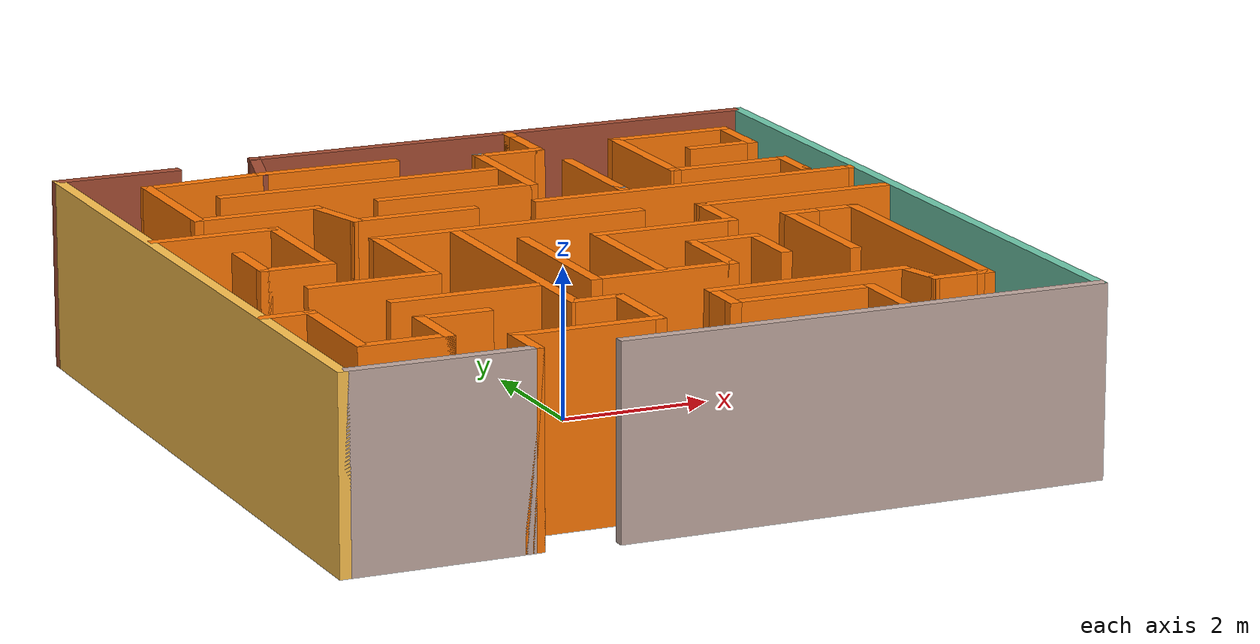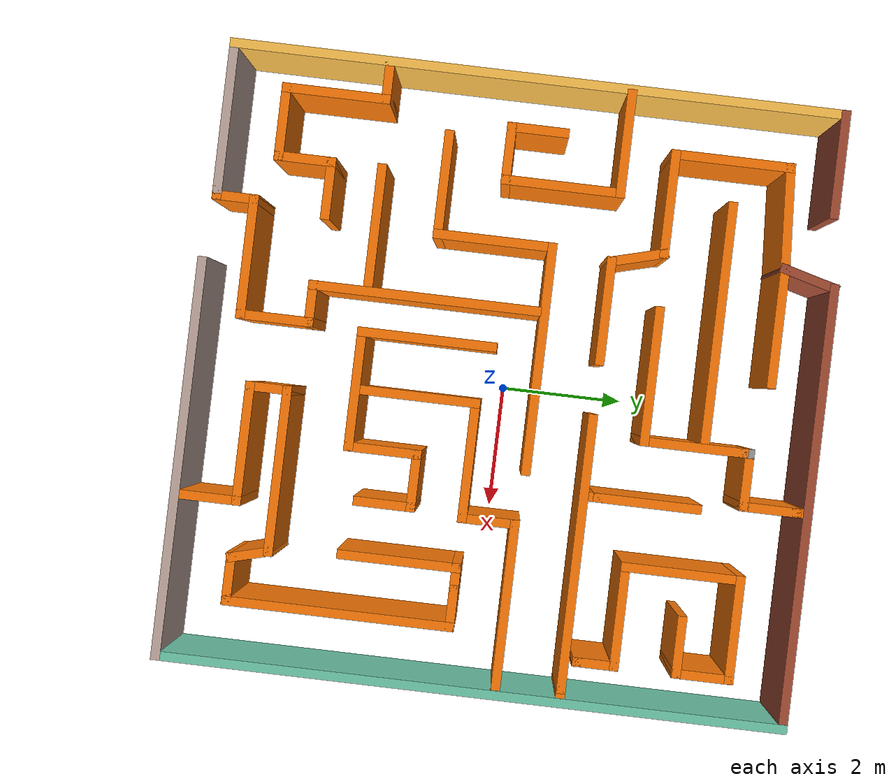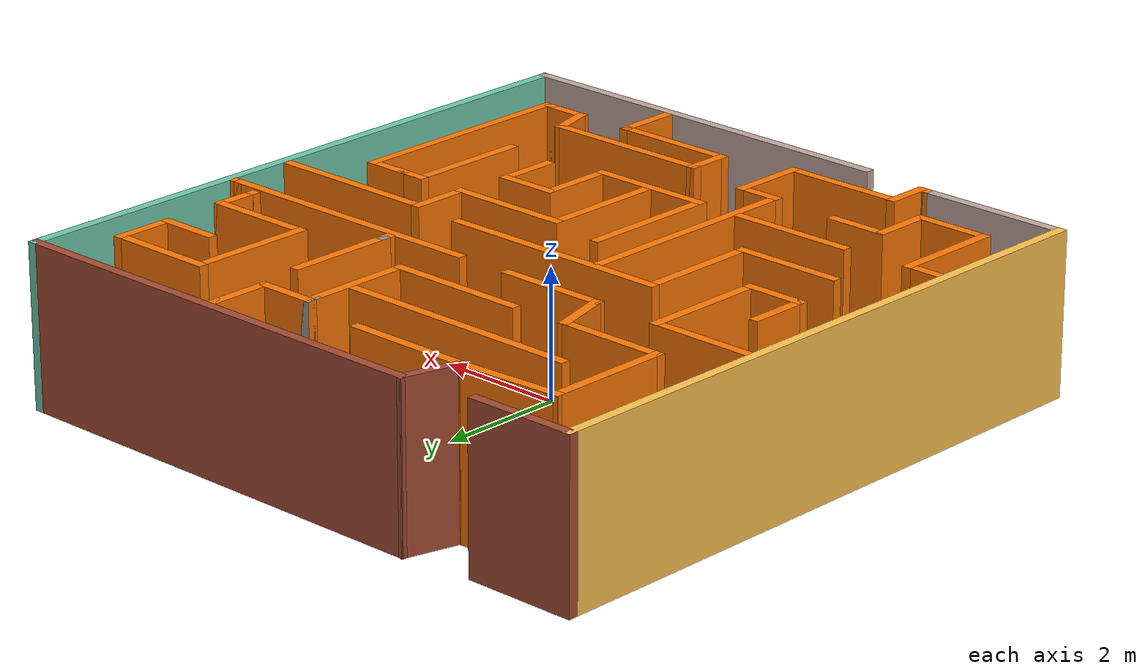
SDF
<?xml version='1.0'?>
<sdf version='1.7'>
  <model name='rom_maze_1'>
    <pose>-0.045778 0.035575 0 0 -0 0</pose>
    <link name='Wall_10'>
      <collision name='Wall_10_Collision'>
        <geometry>
          <box>
            <size>0.25 0.15 2.5</size>
          </box>
        </geometry>
        <pose>0 0 1.25 0 -0 0</pose>
      </collision>
      <visual name='Wall_10_Visual'>
        <pose>0 0 1.25 0 -0 0</pose>
        <geometry>
          <box>
            <size>0.25 0.15 2.5</size>
          </box>
        </geometry>
        <material>
          <script>
            <uri>file://media/materials/scripts/gazebo.material</uri>
            <name>Gazebo/Grey</name>
          </script>
          <ambient>0.996078 0.47451 0.0196078 1</ambient>
        </material>
        <meta>
          <layer>0</layer>
        </meta>
      </visual>
      <pose>-2.54054 -4.95 0 0 -0 0</pose>
    </link>
    <link name='Wall_11'>
      <collision name='Wall_11_Collision'>
        <geometry>
          <box>
            <size>0.75 0.15 2.5</size>
          </box>
        </geometry>
        <pose>0 0 1.25 0 -0 0</pose>
      </collision>
      <visual name='Wall_11_Visual'>
        <pose>0 0 1.25 0 -0 0</pose>
        <geometry>
          <box>
            <size>0.75 0.15 2.5</size>
          </box>
        </geometry>
        <material>
          <script>
            <uri>file://media/materials/scripts/gazebo.material</uri>
            <name>Gazebo/Grey</name>
          </script>
          <ambient>0.996078 0.47451 0.0196078 1</ambient>
        </material>
        <meta>
          <layer>0</layer>
        </meta>
      </visual>
      <pose>-2.49054 -4.65 0 0 -0 1.5708</pose>
    </link>
    <link name='Wall_12'>
      <collision name='Wall_12_Collision'>
        <geometry>
          <box>
            <size>2 0.15 2.5</size>
          </box>
        </geometry>
        <pose>0 0 1.25 0 -0 0</pose>
      </collision>
      <visual name='Wall_12_Visual'>
        <pose>0 0 1.25 0 -0 0</pose>
        <geometry>
          <box>
            <size>2 0.15 2.5</size>
          </box>
        </geometry>
        <material>
          <script>
            <uri>file://media/materials/scripts/gazebo.material</uri>
            <name>Gazebo/Grey</name>
          </script>
          <ambient>0.996078 0.47451 0.0196078 1</ambient>
        </material>
        <meta>
          <layer>0</layer>
        </meta>
      </visual>
      <pose>-1.56554 -4.35 0 0 -0 0</pose>
    </link>
    <link name='Wall_13'>
      <collision name='Wall_13_Collision'>
        <geometry>
          <box>
            <size>1.25 0.15 2.5</size>
          </box>
        </geometry>
        <pose>0 0 1.25 0 -0 0</pose>
      </collision>
      <visual name='Wall_13_Visual'>
        <pose>0 0 1.25 0 -0 0</pose>
        <geometry>
          <box>
            <size>1.25 0.15 2.5</size>
          </box>
        </geometry>
        <material>
          <script>
            <uri>file://media/materials/scripts/gazebo.material</uri>
            <name>Gazebo/Grey</name>
          </script>
          <ambient>0.996078 0.47451 0.0196078 1</ambient>
        </material>
        <meta>
          <layer>0</layer>
        </meta>
      </visual>
      <pose>-0.640538 -3.8 0 0 -0 1.5708</pose>
    </link>
    <link name='Wall_14'>
      <collision name='Wall_14_Collision'>
        <geometry>
          <box>
            <size>0.75 0.15 2.5</size>
          </box>
        </geometry>
        <pose>0 0 1.25 0 -0 0</pose>
      </collision>
      <visual name='Wall_14_Visual'>
        <pose>0 0 1.25 0 -0 0</pose>
        <geometry>
          <box>
            <size>0.75 0.15 2.5</size>
          </box>
        </geometry>
        <material>
          <script>
            <uri>file://media/materials/scripts/gazebo.material</uri>
            <name>Gazebo/Grey</name>
          </script>
          <ambient>0.996078 0.47451 0.0196078 1</ambient>
        </material>
        <meta>
          <layer>0</layer>
        </meta>
      </visual>
      <pose>-0.940538 -3.25 0 0 -0 3.14159</pose>
    </link>
    <link name='Wall_15'>
      <collision name='Wall_15_Collision'>
        <geometry>
          <box>
            <size>3.75 0.15 2.5</size>
          </box>
        </geometry>
        <pose>0 0 1.25 0 -0 0</pose>
      </collision>
      <visual name='Wall_15_Visual'>
        <pose>0 0 1.25 0 -0 0</pose>
        <geometry>
          <box>
            <size>3.75 0.15 2.5</size>
          </box>
        </geometry>
        <material>
          <script>
            <uri>file://media/materials/scripts/gazebo.material</uri>
            <name>Gazebo/Grey</name>
          </script>
          <ambient>0.996078 0.47451 0.0196078 1</ambient>
        </material>
        <meta>
          <layer>0</layer>
        </meta>
      </visual>
      <pose>-1.24054 -1.45 0 0 -0 1.5708</pose>
    </link>
    <link name='Wall_17'>
      <collision name='Wall_17_Collision'>
        <geometry>
          <box>
            <size>6.5 0.15 2.5</size>
          </box>
        </geometry>
        <pose>0 0 1.25 0 -0 0</pose>
      </collision>
      <visual name='Wall_17_Visual'>
        <pose>0 0 1.25 0 -0 0</pose>
        <geometry>
          <box>
            <size>6.5 0.15 2.5</size>
          </box>
        </geometry>
        <material>
          <script>
            <uri>file://media/materials/scripts/gazebo.material</uri>
            <name>Gazebo/Grey</name>
          </script>
          <ambient>0.760784 0.662745 0.627451 1</ambient>
        </material>
        <meta>
          <layer>0</layer>
        </meta>
      </visual>
      <pose>1.76554 -5.05843 0 0 -0 0</pose>
    </link>
    <link name='Wall_18'>
      <collision name='Wall_18_Collision'>
        <geometry>
          <box>
            <size>10.25 0.15 2.5</size>
          </box>
        </geometry>
        <pose>0 0 1.25 0 -0 0</pose>
      </collision>
      <visual name='Wall_18_Visual'>
        <pose>0 0 1.25 0 -0 0</pose>
        <geometry>
          <box>
            <size>10.25 0.15 2.5</size>
          </box>
        </geometry>
        <material>
          <script>
            <uri>file://media/materials/scripts/gazebo.material</uri>
            <name>Gazebo/Grey</name>
          </script>
          <ambient>0.435294 0.796078 0.67451 1</ambient>
        </material>
        <meta>
          <layer>0</layer>
        </meta>
      </visual>
      <pose>4.94054 -0.008428 0 0 -0 1.5708</pose>
    </link>
    <link name='Wall_19'>
      <collision name='Wall_19_Collision'>
        <geometry>
          <box>
            <size>7.25 0.15 2.5</size>
          </box>
        </geometry>
        <pose>0 0 1.25 0 -0 0</pose>
      </collision>
      <visual name='Wall_19_Visual'>
        <pose>0 0 1.25 0 -0 0</pose>
        <geometry>
          <box>
            <size>7.25 0.15 2.5</size>
          </box>
        </geometry>
        <material>
          <script>
            <uri>file://media/materials/scripts/gazebo.material</uri>
            <name>Gazebo/Bricks</name>
          </script>
          <ambient>1 1 1 1</ambient>
        </material>
        <meta>
          <layer>0</layer>
        </meta>
      </visual>
      <pose>1.39054 5.04157 0 0 -0 3.14159</pose>
    </link>
    <link name='Wall_20'>
      <collision name='Wall_20_Collision'>
        <geometry>
          <box>
            <size>1 0.15 2.5</size>
          </box>
        </geometry>
        <pose>0 0 1.25 0 -0 0</pose>
      </collision>
      <visual name='Wall_20_Visual'>
        <pose>0 0 1.25 0 -0 0</pose>
        <geometry>
          <box>
            <size>1 0.15 2.5</size>
          </box>
        </geometry>
        <material>
          <script>
            <uri>file://media/materials/scripts/gazebo.material</uri>
            <name>Gazebo/Bricks</name>
          </script>
          <ambient>1 1 1 1</ambient>
        </material>
        <meta>
          <layer>0</layer>
        </meta>
      </visual>
      <pose>-2.26946 4.63105 0 0 -0 -1.8326</pose>
    </link>
    <link name='Wall_21'>
      <collision name='Wall_21_Collision'>
        <geometry>
          <box>
            <size>2 0.15 2.5</size>
          </box>
        </geometry>
        <pose>0 0 1.25 0 -0 0</pose>
      </collision>
      <visual name='Wall_21_Visual'>
        <pose>0 0 1.25 0 -0 0</pose>
        <geometry>
          <box>
            <size>2 0.15 2.5</size>
          </box>
        </geometry>
        <material>
          <script>
            <uri>file://media/materials/scripts/gazebo.material</uri>
            <name>Gazebo/Grey</name>
          </script>
          <ambient>0.996078 0.47451 0.0196078 1</ambient>
        </material>
        <meta>
          <layer>0</layer>
        </meta>
      </visual>
      <pose>-1.45446 4.22053 0 0 -0 0</pose>
    </link>
    <link name='Wall_23'>
      <collision name='Wall_23_Collision'>
        <geometry>
          <box>
            <size>3.75 0.15 2.5</size>
          </box>
        </geometry>
        <pose>0 0 1.25 0 -0 0</pose>
      </collision>
      <visual name='Wall_23_Visual'>
        <pose>0 0 1.25 0 -0 0</pose>
        <geometry>
          <box>
            <size>3.75 0.15 2.5</size>
          </box>
        </geometry>
        <material>
          <script>
            <uri>file://media/materials/scripts/gazebo.material</uri>
            <name>Gazebo/Grey</name>
          </script>
          <ambient>0.996078 0.47451 0.0196078 1</ambient>
        </material>
        <meta>
          <layer>0</layer>
        </meta>
      </visual>
      <pose>-0.485112 0.482847 0 0 -0 3.14159</pose>
    </link>
    <link name='Wall_24'>
      <collision name='Wall_24_Collision'>
        <geometry>
          <box>
            <size>2 0.15 2.5</size>
          </box>
        </geometry>
        <pose>0 0 1.25 0 -0 0</pose>
      </collision>
      <visual name='Wall_24_Visual'>
        <pose>0 0 1.25 0 -0 0</pose>
        <geometry>
          <box>
            <size>2 0.15 2.5</size>
          </box>
        </geometry>
        <material>
          <script>
            <uri>file://media/materials/scripts/gazebo.material</uri>
            <name>Gazebo/Grey</name>
          </script>
          <ambient>0.996078 0.47451 0.0196078 1</ambient>
        </material>
        <meta>
          <layer>0</layer>
        </meta>
      </visual>
      <pose>-2.28511 -0.442153 0 0 -0 -1.5708</pose>
    </link>
    <link name='Wall_25'>
      <collision name='Wall_25_Collision'>
        <geometry>
          <box>
            <size>1.75 0.15 2.5</size>
          </box>
        </geometry>
        <pose>0 0 1.25 0 -0 0</pose>
      </collision>
      <visual name='Wall_25_Visual'>
        <pose>0 0 1.25 0 -0 0</pose>
        <geometry>
          <box>
            <size>1.75 0.15 2.5</size>
          </box>
        </geometry>
        <material>
          <script>
            <uri>file://media/materials/scripts/gazebo.material</uri>
            <name>Gazebo/Grey</name>
          </script>
          <ambient>0.996078 0.47451 0.0196078 1</ambient>
        </material>
        <meta>
          <layer>0</layer>
        </meta>
      </visual>
      <pose>-3.08511 -1.36715 0 0 -0 3.14159</pose>
    </link>
    <link name='Wall_27'>
      <collision name='Wall_27_Collision'>
        <geometry>
          <box>
            <size>0.75 0.15 2.5</size>
          </box>
        </geometry>
        <pose>0 0 1.25 0 -0 0</pose>
      </collision>
      <visual name='Wall_27_Visual'>
        <pose>0 0 1.25 0 -0 0</pose>
        <geometry>
          <box>
            <size>0.75 0.15 2.5</size>
          </box>
        </geometry>
        <material>
          <script>
            <uri>file://media/materials/scripts/gazebo.material</uri>
            <name>Gazebo/Grey</name>
          </script>
          <ambient>0.996078 0.47451 0.0196078 1</ambient>
        </material>
        <meta>
          <layer>0</layer>
        </meta>
      </visual>
      <pose>-4.62731 -2.43988 0 0 -0 0</pose>
    </link>
    <link name='Wall_28'>
      <collision name='Wall_28_Collision'>
        <geometry>
          <box>
            <size>1.75 0.15 2.5</size>
          </box>
        </geometry>
        <pose>0 0 1.25 0 -0 0</pose>
      </collision>
      <visual name='Wall_28_Visual'>
        <pose>0 0 1.25 0 -0 0</pose>
        <geometry>
          <box>
            <size>1.75 0.15 2.5</size>
          </box>
        </geometry>
        <material>
          <script>
            <uri>file://media/materials/scripts/gazebo.material</uri>
            <name>Gazebo/Grey</name>
          </script>
          <ambient>0.996078 0.47451 0.0196078 1</ambient>
        </material>
        <meta>
          <layer>0</layer>
        </meta>
      </visual>
      <pose>-4.32731 -3.23988 0 0 -0 -1.5708</pose>
    </link>
    <link name='Wall_29'>
      <collision name='Wall_29_Collision'>
        <geometry>
          <box>
            <size>1.25 0.15 2.5</size>
          </box>
        </geometry>
        <pose>0 0 1.25 0 -0 0</pose>
      </collision>
      <visual name='Wall_29_Visual'>
        <pose>0 0 1.25 0 -0 0</pose>
        <geometry>
          <box>
            <size>1.25 0.15 2.5</size>
          </box>
        </geometry>
        <material>
          <script>
            <uri>file://media/materials/scripts/gazebo.material</uri>
            <name>Gazebo/Grey</name>
          </script>
          <ambient>0.996078 0.47451 0.0196078 1</ambient>
        </material>
        <meta>
          <layer>0</layer>
        </meta>
      </visual>
      <pose>-3.77731 -4.03988 0 0 -0 0</pose>
    </link>
    <link name='Wall_30'>
      <collision name='Wall_30_Collision'>
        <geometry>
          <box>
            <size>1 0.15 2.5</size>
          </box>
        </geometry>
        <pose>0 0 1.25 0 -0 0</pose>
      </collision>
      <visual name='Wall_30_Visual'>
        <pose>0 0 1.25 0 -0 0</pose>
        <geometry>
          <box>
            <size>1 0.15 2.5</size>
          </box>
        </geometry>
        <material>
          <script>
            <uri>file://media/materials/scripts/gazebo.material</uri>
            <name>Gazebo/Grey</name>
          </script>
          <ambient>0.996078 0.47451 0.0196078 1</ambient>
        </material>
        <meta>
          <layer>0</layer>
        </meta>
      </visual>
      <pose>-3.22731 -3.61488 0 0 -0 1.5708</pose>
    </link>
    <link name='Wall_31'>
      <collision name='Wall_31_Collision'>
        <geometry>
          <box>
            <size>1 0.15 2.5</size>
          </box>
        </geometry>
        <pose>0 0 1.25 0 -0 0</pose>
      </collision>
      <visual name='Wall_31_Visual'>
        <pose>0 0 1.25 0 -0 0</pose>
        <geometry>
          <box>
            <size>1 0.15 2.5</size>
          </box>
        </geometry>
        <material>
          <script>
            <uri>file://media/materials/scripts/gazebo.material</uri>
            <name>Gazebo/Grey</name>
          </script>
          <ambient>0.996078 0.47451 0.0196078 1</ambient>
        </material>
        <meta>
          <layer>0</layer>
        </meta>
      </visual>
      <pose>-2.80231 -3.18988 0 0 -0 0</pose>
    </link>
    <link name='Wall_33'>
      <collision name='Wall_33_Collision'>
        <geometry>
          <box>
            <size>1.75 0.15 2.5</size>
          </box>
        </geometry>
        <pose>0 0 1.25 0 -0 0</pose>
      </collision>
      <visual name='Wall_33_Visual'>
        <pose>0 0 1.25 0 -0 0</pose>
        <geometry>
          <box>
            <size>1.75 0.15 2.5</size>
          </box>
        </geometry>
        <material>
          <script>
            <uri>file://media/materials/scripts/gazebo.material</uri>
            <name>Gazebo/Grey</name>
          </script>
          <ambient>0.996078 0.47451 0.0196078 1</ambient>
        </material>
        <meta>
          <layer>0</layer>
        </meta>
      </visual>
      <pose>-4.07441 1.4615 0 0 -0 0</pose>
    </link>
    <link name='Wall_34'>
      <collision name='Wall_34_Collision'>
        <geometry>
          <box>
            <size>2 0.15 2.5</size>
          </box>
        </geometry>
        <pose>0 0 1.25 0 -0 0</pose>
      </collision>
      <visual name='Wall_34_Visual'>
        <pose>0 0 1.25 0 -0 0</pose>
        <geometry>
          <box>
            <size>2 0.15 2.5</size>
          </box>
        </geometry>
        <material>
          <script>
            <uri>file://media/materials/scripts/gazebo.material</uri>
            <name>Gazebo/Grey</name>
          </script>
          <ambient>0.996078 0.47451 0.0196078 1</ambient>
        </material>
        <meta>
          <layer>0</layer>
        </meta>
      </visual>
      <pose>-3.27441 0.536497 0 0 -0 -1.5708</pose>
    </link>
    <link name='Wall_35'>
      <collision name='Wall_35_Collision'>
        <geometry>
          <box>
            <size>1 0.15 2.5</size>
          </box>
        </geometry>
        <pose>0 0 1.25 0 -0 0</pose>
      </collision>
      <visual name='Wall_35_Visual'>
        <pose>0 0 1.25 0 -0 0</pose>
        <geometry>
          <box>
            <size>1 0.15 2.5</size>
          </box>
        </geometry>
        <material>
          <script>
            <uri>file://media/materials/scripts/gazebo.material</uri>
            <name>Gazebo/Grey</name>
          </script>
          <ambient>0.996078 0.47451 0.0196078 1</ambient>
        </material>
        <meta>
          <layer>0</layer>
        </meta>
      </visual>
      <pose>-3.69941 -0.388503 0 0 -0 3.14159</pose>
    </link>
    <link name='Wall_36'>
      <collision name='Wall_36_Collision'>
        <geometry>
          <box>
            <size>1 0.15 2.5</size>
          </box>
        </geometry>
        <pose>0 0 1.25 0 -0 0</pose>
      </collision>
      <visual name='Wall_36_Visual'>
        <pose>0 0 1.25 0 -0 0</pose>
        <geometry>
          <box>
            <size>1 0.15 2.5</size>
          </box>
        </geometry>
        <material>
          <script>
            <uri>file://media/materials/scripts/gazebo.material</uri>
            <name>Gazebo/Grey</name>
          </script>
          <ambient>0.996078 0.47451 0.0196078 1</ambient>
        </material>
        <meta>
          <layer>0</layer>
        </meta>
      </visual>
      <pose>-4.12441 0.036497 0 0 -0 1.5708</pose>
    </link>
    <link name='Wall_38'>
      <collision name='Wall_38_Collision'>
        <geometry>
          <box>
            <size>2 0.15 2.5</size>
          </box>
        </geometry>
        <pose>0 0 1.25 0 -0 0</pose>
      </collision>
      <visual name='Wall_38_Visual'>
        <pose>0 0 1.25 0 -0 0</pose>
        <geometry>
          <box>
            <size>2 0.15 2.5</size>
          </box>
        </geometry>
        <material>
          <script>
            <uri>file://media/materials/scripts/gazebo.material</uri>
            <name>Gazebo/Grey</name>
          </script>
          <ambient>0.996078 0.47451 0.0196078 1</ambient>
        </material>
        <meta>
          <layer>0</layer>
        </meta>
      </visual>
      <pose>-2.29629 -2.37375 0 0 -0 0</pose>
    </link>
    <link name='Wall_40'>
      <collision name='Wall_40_Collision'>
        <geometry>
          <box>
            <size>1 0.15 2.5</size>
          </box>
        </geometry>
        <pose>0 0 1.25 0 -0 0</pose>
      </collision>
      <visual name='Wall_40_Visual'>
        <pose>0 0 1.25 0 -0 0</pose>
        <geometry>
          <box>
            <size>1 0.15 2.5</size>
          </box>
        </geometry>
        <material>
          <script>
            <uri>file://media/materials/scripts/gazebo.material</uri>
            <name>Gazebo/Grey</name>
          </script>
          <ambient>0.996078 0.47451 0.0196078 1</ambient>
        </material>
        <meta>
          <layer>0</layer>
        </meta>
      </visual>
      <pose>2.33321 -4.48795 0 0 -0 1.5708</pose>
    </link>
    <link name='Wall_41'>
      <collision name='Wall_41_Collision'>
        <geometry>
          <box>
            <size>2 0.15 2.5</size>
          </box>
        </geometry>
        <pose>0 0 1.25 0 -0 0</pose>
      </collision>
      <visual name='Wall_41_Visual'>
        <pose>0 0 1.25 0 -0 0</pose>
        <geometry>
          <box>
            <size>2 0.15 2.5</size>
          </box>
        </geometry>
        <material>
          <script>
            <uri>file://media/materials/scripts/gazebo.material</uri>
            <name>Gazebo/Grey</name>
          </script>
          <ambient>0.996078 0.47451 0.0196078 1</ambient>
        </material>
        <meta>
          <layer>0</layer>
        </meta>
      </visual>
      <pose>1.40821 -4.06295 0 0 -0 3.14159</pose>
    </link>
    <link name='Wall_42'>
      <collision name='Wall_42_Collision'>
        <geometry>
          <box>
            <size>0.75 0.15 2.5</size>
          </box>
        </geometry>
        <pose>0 0 1.25 0 -0 0</pose>
      </collision>
      <visual name='Wall_42_Visual'>
        <pose>0 0 1.25 0 -0 0</pose>
        <geometry>
          <box>
            <size>0.75 0.15 2.5</size>
          </box>
        </geometry>
        <material>
          <script>
            <uri>file://media/materials/scripts/gazebo.material</uri>
            <name>Gazebo/Grey</name>
          </script>
          <ambient>0.996078 0.47451 0.0196078 1</ambient>
        </material>
        <meta>
          <layer>0</layer>
        </meta>
      </visual>
      <pose>0.483213 -3.76295 0 0 -0 1.5708</pose>
    </link>
    <link name='Wall_43'>
      <collision name='Wall_43_Collision'>
        <geometry>
          <box>
            <size>2.75 0.15 2.5</size>
          </box>
        </geometry>
        <pose>0 0 1.25 0 -0 0</pose>
      </collision>
      <visual name='Wall_43_Visual'>
        <pose>0 0 1.25 0 -0 0</pose>
        <geometry>
          <box>
            <size>2.75 0.15 2.5</size>
          </box>
        </geometry>
        <material>
          <script>
            <uri>file://media/materials/scripts/gazebo.material</uri>
            <name>Gazebo/Grey</name>
          </script>
          <ambient>0.996078 0.47451 0.0196078 1</ambient>
        </material>
        <meta>
          <layer>0</layer>
        </meta>
      </visual>
      <pose>1.78321 -3.46295 0 0 -0 0</pose>
    </link>
    <link name='Wall_44'>
      <collision name='Wall_44_Collision'>
        <geometry>
          <box>
            <size>0.75 0.15 2.5</size>
          </box>
        </geometry>
        <pose>0 0 1.25 0 -0 0</pose>
      </collision>
      <visual name='Wall_44_Visual'>
        <pose>0 0 1.25 0 -0 0</pose>
        <geometry>
          <box>
            <size>0.75 0.15 2.5</size>
          </box>
        </geometry>
        <material>
          <script>
            <uri>file://media/materials/scripts/gazebo.material</uri>
            <name>Gazebo/Grey</name>
          </script>
          <ambient>0.996078 0.47451 0.0196078 1</ambient>
        </material>
        <meta>
          <layer>0</layer>
        </meta>
      </visual>
      <pose>3.16086 -3.75273 0 0 -0 -1.309</pose>
    </link>
    <link name='Wall_45'>
      <collision name='Wall_45_Collision'>
        <geometry>
          <box>
            <size>0.75 0.15 2.5</size>
          </box>
        </geometry>
        <pose>0 0 1.25 0 -0 0</pose>
      </collision>
      <visual name='Wall_45_Visual'>
        <pose>0 0 1.25 0 -0 0</pose>
        <geometry>
          <box>
            <size>0.75 0.15 2.5</size>
          </box>
        </geometry>
        <material>
          <script>
            <uri>file://media/materials/scripts/gazebo.material</uri>
            <name>Gazebo/Grey</name>
          </script>
          <ambient>0.996078 0.47451 0.0196078 1</ambient>
        </material>
        <meta>
          <layer>0</layer>
        </meta>
      </visual>
      <pose>3.5385 -4.04251 0 0 -0 0</pose>
    </link>
    <link name='Wall_46'>
      <collision name='Wall_46_Collision'>
        <geometry>
          <box>
            <size>0.25 0.15 2.5</size>
          </box>
        </geometry>
        <pose>0 0 1.25 0 -0 0</pose>
      </collision>
      <visual name='Wall_46_Visual'>
        <pose>0 0 1.25 0 -0 0</pose>
        <geometry>
          <box>
            <size>0.25 0.15 2.5</size>
          </box>
        </geometry>
        <material>
          <script>
            <uri>file://media/materials/scripts/gazebo.material</uri>
            <name>Gazebo/Grey</name>
          </script>
          <ambient>0.996078 0.47451 0.0196078 1</ambient>
        </material>
        <meta>
          <layer>0</layer>
        </meta>
      </visual>
      <pose>3.8885 -4.04251 0 0 -0 0</pose>
    </link>
    <link name='Wall_47'>
      <collision name='Wall_47_Collision'>
        <geometry>
          <box>
            <size>3.75 0.15 2.5</size>
          </box>
        </geometry>
        <pose>0 0 1.25 0 -0 0</pose>
      </collision>
      <visual name='Wall_47_Visual'>
        <pose>0 0 1.25 0 -0 0</pose>
        <geometry>
          <box>
            <size>3.75 0.15 2.5</size>
          </box>
        </geometry>
        <material>
          <script>
            <uri>file://media/materials/scripts/gazebo.material</uri>
            <name>Gazebo/Grey</name>
          </script>
          <ambient>0.996078 0.47451 0.0196078 1</ambient>
        </material>
        <meta>
          <layer>0</layer>
        </meta>
      </visual>
      <pose>3.9385 -2.24251 0 0 -0 1.5708</pose>
    </link>
    <link name='Wall_48'>
      <collision name='Wall_48_Collision'>
        <geometry>
          <box>
            <size>0.75 0.15 2.5</size>
          </box>
        </geometry>
        <pose>0 0 1.25 0 -0 0</pose>
      </collision>
      <visual name='Wall_48_Visual'>
        <pose>0 0 1.25 0 -0 0</pose>
        <geometry>
          <box>
            <size>0.75 0.15 2.5</size>
          </box>
        </geometry>
        <material>
          <script>
            <uri>file://media/materials/scripts/gazebo.material</uri>
            <name>Gazebo/Grey</name>
          </script>
          <ambient>0.996078 0.47451 0.0196078 1</ambient>
        </material>
        <meta>
          <layer>0</layer>
        </meta>
      </visual>
      <pose>3.6385 -0.442508 0 0 -0 3.14159</pose>
    </link>
    <link name='Wall_49'>
      <collision name='Wall_49_Collision'>
        <geometry>
          <box>
            <size>0.5 0.15 2.5</size>
          </box>
        </geometry>
        <pose>0 0 1.25 0 -0 0</pose>
      </collision>
      <visual name='Wall_49_Visual'>
        <pose>0 0 1.25 0 -0 0</pose>
        <geometry>
          <box>
            <size>0.5 0.15 2.5</size>
          </box>
        </geometry>
        <material>
          <script>
            <uri>file://media/materials/scripts/gazebo.material</uri>
            <name>Gazebo/Grey</name>
          </script>
          <ambient>0.996078 0.47451 0.0196078 1</ambient>
        </material>
        <meta>
          <layer>0</layer>
        </meta>
      </visual>
      <pose>3.1635 -0.442508 0 0 -0 3.14159</pose>
    </link>
    <link name='Wall_50'>
      <collision name='Wall_50_Collision'>
        <geometry>
          <box>
            <size>2 0.15 2.5</size>
          </box>
        </geometry>
        <pose>0 0 1.25 0 -0 0</pose>
      </collision>
      <visual name='Wall_50_Visual'>
        <pose>0 0 1.25 0 -0 0</pose>
        <geometry>
          <box>
            <size>2 0.15 2.5</size>
          </box>
        </geometry>
        <material>
          <script>
            <uri>file://media/materials/scripts/gazebo.material</uri>
            <name>Gazebo/Grey</name>
          </script>
          <ambient>0.996078 0.47451 0.0196078 1</ambient>
        </material>
        <meta>
          <layer>0</layer>
        </meta>
      </visual>
      <pose>2.9885 -1.36751 0 0 -0 -1.5708</pose>
    </link>
    <link name='Wall_52'>
      <collision name='Wall_52_Collision'>
        <geometry>
          <box>
            <size>1.75 0.15 2.5</size>
          </box>
        </geometry>
        <pose>0 0 1.25 0 -0 0</pose>
      </collision>
      <visual name='Wall_52_Visual'>
        <pose>0 0 1.25 0 -0 0</pose>
        <geometry>
          <box>
            <size>1.75 0.15 2.5</size>
          </box>
        </geometry>
        <material>
          <script>
            <uri>file://media/materials/scripts/gazebo.material</uri>
            <name>Gazebo/Grey</name>
          </script>
          <ambient>0.996078 0.47451 0.0196078 1</ambient>
        </material>
        <meta>
          <layer>0</layer>
        </meta>
      </visual>
      <pose>-1.37629 1.44827 0 0 -0 3.14159</pose>
    </link>
    <link name='Wall_53'>
      <collision name='Wall_53_Collision'>
        <geometry>
          <box>
            <size>1 0.15 2.5</size>
          </box>
        </geometry>
        <pose>0 0 1.25 0 -0 0</pose>
      </collision>
      <visual name='Wall_53_Visual'>
        <pose>0 0 1.25 0 -0 0</pose>
        <geometry>
          <box>
            <size>1 0.15 2.5</size>
          </box>
        </geometry>
        <material>
          <script>
            <uri>file://media/materials/scripts/gazebo.material</uri>
            <name>Gazebo/Grey</name>
          </script>
          <ambient>0.996078 0.47451 0.0196078 1</ambient>
        </material>
        <meta>
          <layer>0</layer>
        </meta>
      </visual>
      <pose>-2.28629 1.85879 0 0 -0 1.8326</pose>
    </link>
    <link name='Wall_54'>
      <collision name='Wall_54_Collision'>
        <geometry>
          <box>
            <size>1.75 0.15 2.5</size>
          </box>
        </geometry>
        <pose>0 0 1.25 0 -0 0</pose>
      </collision>
      <visual name='Wall_54_Visual'>
        <pose>0 0 1.25 0 -0 0</pose>
        <geometry>
          <box>
            <size>1.75 0.15 2.5</size>
          </box>
        </geometry>
        <material>
          <script>
            <uri>file://media/materials/scripts/gazebo.material</uri>
            <name>Gazebo/Grey</name>
          </script>
          <ambient>0.996078 0.47451 0.0196078 1</ambient>
        </material>
        <meta>
          <layer>0</layer>
        </meta>
      </visual>
      <pose>-3.19628 2.26931 0 0 -0 3.14159</pose>
    </link>
    <link name='Wall_55'>
      <collision name='Wall_55_Collision'>
        <geometry>
          <box>
            <size>2 0.15 2.5</size>
          </box>
        </geometry>
        <pose>0 0 1.25 0 -0 0</pose>
      </collision>
      <visual name='Wall_55_Visual'>
        <pose>0 0 1.25 0 -0 0</pose>
        <geometry>
          <box>
            <size>2 0.15 2.5</size>
          </box>
        </geometry>
        <material>
          <script>
            <uri>file://media/materials/scripts/gazebo.material</uri>
            <name>Gazebo/Grey</name>
          </script>
          <ambient>0.996078 0.47451 0.0196078 1</ambient>
        </material>
        <meta>
          <layer>0</layer>
        </meta>
      </visual>
      <pose>-3.99628 3.19431 0 0 -0 1.5708</pose>
    </link>
    <link name='Wall_56'>
      <collision name='Wall_56_Collision'>
        <geometry>
          <box>
            <size>1.76999 0.15 2.5</size>
          </box>
        </geometry>
        <pose>0 0 1.25 0 -0 0</pose>
      </collision>
      <visual name='Wall_56_Visual'>
        <pose>0 0 1.25 0 -0 0</pose>
        <geometry>
          <box>
            <size>1.76999 0.15 2.5</size>
          </box>
        </geometry>
        <material>
          <script>
            <uri>file://media/materials/scripts/gazebo.material</uri>
            <name>Gazebo/Grey</name>
          </script>
          <ambient>0.996078 0.47451 0.0196078 1</ambient>
        </material>
        <meta>
          <layer>0</layer>
        </meta>
      </visual>
      <pose>-3.18787 4.16992 0 0 -0 0.062526</pose>
    </link>
    <link name='Wall_58'>
      <collision name='Wall_58_Collision'>
        <geometry>
          <box>
            <size>1.75 0.15 2.5</size>
          </box>
        </geometry>
        <pose>0 0 1.25 0 -0 0</pose>
      </collision>
      <visual name='Wall_58_Visual'>
        <pose>0 0 1.25 0 -0 0</pose>
        <geometry>
          <box>
            <size>1.75 0.15 2.5</size>
          </box>
        </geometry>
        <material>
          <script>
            <uri>file://media/materials/scripts/gazebo.material</uri>
            <name>Gazebo/Bricks</name>
          </script>
          <ambient>1 1 1 1</ambient>
        </material>
        <meta>
          <layer>0</layer>
        </meta>
      </visual>
      <pose>-4.14054 4.9 0 0 -0 0</pose>
    </link>
    <link name='Wall_60'>
      <collision name='Wall_60_Collision'>
        <geometry>
          <box>
            <size>2.25 0.15 2.5</size>
          </box>
        </geometry>
        <pose>0 0 1.25 0 -0 0</pose>
      </collision>
      <visual name='Wall_60_Visual'>
        <pose>0 0 1.25 0 -0 0</pose>
        <geometry>
          <box>
            <size>2.25 0.15 2.5</size>
          </box>
        </geometry>
        <material>
          <script>
            <uri>file://media/materials/scripts/gazebo.material</uri>
            <name>Gazebo/Grey</name>
          </script>
          <ambient>0.996078 0.47451 0.0196078 1</ambient>
        </material>
        <meta>
          <layer>0</layer>
        </meta>
      </visual>
      <pose>-0.589512 -1.3342 0 0 -0 -1.5708</pose>
    </link>
    <link name='Wall_61'>
      <collision name='Wall_61_Collision'>
        <geometry>
          <box>
            <size>2 0.15 2.5</size>
          </box>
        </geometry>
        <pose>0 0 1.25 0 -0 0</pose>
      </collision>
      <visual name='Wall_61_Visual'>
        <pose>0 0 1.25 0 -0 0</pose>
        <geometry>
          <box>
            <size>2 0.15 2.5</size>
          </box>
        </geometry>
        <material>
          <script>
            <uri>file://media/materials/scripts/gazebo.material</uri>
            <name>Gazebo/Grey</name>
          </script>
          <ambient>0.996078 0.47451 0.0196078 1</ambient>
        </material>
        <meta>
          <layer>0</layer>
        </meta>
      </visual>
      <pose>0.335488 -2.3842 0 0 -0 0</pose>
    </link>
    <link name='Wall_62'>
      <collision name='Wall_62_Collision'>
        <geometry>
          <box>
            <size>1.25 0.15 2.5</size>
          </box>
        </geometry>
        <pose>0 0 1.25 0 -0 0</pose>
      </collision>
      <visual name='Wall_62_Visual'>
        <pose>0 0 1.25 0 -0 0</pose>
        <geometry>
          <box>
            <size>1.25 0.15 2.5</size>
          </box>
        </geometry>
        <material>
          <script>
            <uri>file://media/materials/scripts/gazebo.material</uri>
            <name>Gazebo/Grey</name>
          </script>
          <ambient>0.996078 0.47451 0.0196078 1</ambient>
        </material>
        <meta>
          <layer>0</layer>
        </meta>
      </visual>
      <pose>1.26049 -1.8342 0 0 -0 1.5708</pose>
    </link>
    <link name='Wall_63'>
      <collision name='Wall_63_Collision'>
        <geometry>
          <box>
            <size>1 0.15 2.5</size>
          </box>
        </geometry>
        <pose>0 0 1.25 0 -0 0</pose>
      </collision>
      <visual name='Wall_63_Visual'>
        <pose>0 0 1.25 0 -0 0</pose>
        <geometry>
          <box>
            <size>1 0.15 2.5</size>
          </box>
        </geometry>
        <material>
          <script>
            <uri>file://media/materials/scripts/gazebo.material</uri>
            <name>Gazebo/Grey</name>
          </script>
          <ambient>0.996078 0.47451 0.0196078 1</ambient>
        </material>
        <meta>
          <layer>0</layer>
        </meta>
      </visual>
      <pose>1.68549 -1.2842 0 0 -0 0</pose>
    </link>
    <link name='Wall_64'>
      <collision name='Wall_64_Collision'>
        <geometry>
          <box>
            <size>1 0.15 2.5</size>
          </box>
        </geometry>
        <pose>0 0 1.25 0 -0 0</pose>
      </collision>
      <visual name='Wall_64_Visual'>
        <pose>0 0 1.25 0 -0 0</pose>
        <geometry>
          <box>
            <size>1 0.15 2.5</size>
          </box>
        </geometry>
        <material>
          <script>
            <uri>file://media/materials/scripts/gazebo.material</uri>
            <name>Gazebo/Grey</name>
          </script>
          <ambient>0.996078 0.47451 0.0196078 1</ambient>
        </material>
        <meta>
          <layer>0</layer>
        </meta>
      </visual>
      <pose>2.11049 -1.7092 0 0 -0 -1.5708</pose>
    </link>
    <link name='Wall_66'>
      <collision name='Wall_66_Collision'>
        <geometry>
          <box>
            <size>2 0.15 2.5</size>
          </box>
        </geometry>
        <pose>0 0 1.25 0 -0 0</pose>
      </collision>
      <visual name='Wall_66_Visual'>
        <pose>0 0 1.25 0 -0 0</pose>
        <geometry>
          <box>
            <size>2 0.15 2.5</size>
          </box>
        </geometry>
        <material>
          <script>
            <uri>file://media/materials/scripts/gazebo.material</uri>
            <name>Gazebo/Grey</name>
          </script>
          <ambient>0.996078 0.47451 0.0196078 1</ambient>
        </material>
        <meta>
          <layer>0</layer>
        </meta>
      </visual>
      <pose>0.336238 -1.3694 0 0 -0 1.5708</pose>
    </link>
    <link name='Wall_67'>
      <collision name='Wall_67_Collision'>
        <geometry>
          <box>
            <size>2 0.15 2.5</size>
          </box>
        </geometry>
        <pose>0 0 1.25 0 -0 0</pose>
      </collision>
      <visual name='Wall_67_Visual'>
        <pose>0 0 1.25 0 -0 0</pose>
        <geometry>
          <box>
            <size>2 0.15 2.5</size>
          </box>
        </geometry>
        <material>
          <script>
            <uri>file://media/materials/scripts/gazebo.material</uri>
            <name>Gazebo/Grey</name>
          </script>
          <ambient>0.996078 0.47451 0.0196078 1</ambient>
        </material>
        <meta>
          <layer>0</layer>
        </meta>
      </visual>
      <pose>1.26124 -0.444403 0 0 -0 0</pose>
    </link>
    <link name='Wall_68'>
      <collision name='Wall_68_Collision'>
        <geometry>
          <box>
            <size>1 0.15 2.5</size>
          </box>
        </geometry>
        <pose>0 0 1.25 0 -0 0</pose>
      </collision>
      <visual name='Wall_68_Visual'>
        <pose>0 0 1.25 0 -0 0</pose>
        <geometry>
          <box>
            <size>1 0.15 2.5</size>
          </box>
        </geometry>
        <material>
          <script>
            <uri>file://media/materials/scripts/gazebo.material</uri>
            <name>Gazebo/Grey</name>
          </script>
          <ambient>0.996078 0.47451 0.0196078 1</ambient>
        </material>
        <meta>
          <layer>0</layer>
        </meta>
      </visual>
      <pose>2.18624 -0.019403 0 0 -0 1.5708</pose>
    </link>
    <link name='Wall_69'>
      <collision name='Wall_69_Collision'>
        <geometry>
          <box>
            <size>2.75 0.15 2.5</size>
          </box>
        </geometry>
        <pose>0 0 1.25 0 -0 0</pose>
      </collision>
      <visual name='Wall_69_Visual'>
        <pose>0 0 1.25 0 -0 0</pose>
        <geometry>
          <box>
            <size>2.75 0.15 2.5</size>
          </box>
        </geometry>
        <material>
          <script>
            <uri>file://media/materials/scripts/gazebo.material</uri>
            <name>Gazebo/Grey</name>
          </script>
          <ambient>0.996078 0.47451 0.0196078 1</ambient>
        </material>
        <meta>
          <layer>0</layer>
        </meta>
      </visual>
      <pose>3.48624 0.405597 0 0 -0 0</pose>
    </link>
    <link name='Wall_71'>
      <collision name='Wall_71_Collision'>
        <geometry>
          <box>
            <size>2.25 0.15 2.5</size>
          </box>
        </geometry>
        <pose>0 0 1.25 0 -0 0</pose>
      </collision>
      <visual name='Wall_71_Visual'>
        <pose>0 0 1.25 0 -0 0</pose>
        <geometry>
          <box>
            <size>2.25 0.15 2.5</size>
          </box>
        </geometry>
        <material>
          <script>
            <uri>file://media/materials/scripts/gazebo.material</uri>
            <name>Gazebo/Grey</name>
          </script>
          <ambient>0.996078 0.47451 0.0196078 1</ambient>
        </material>
        <meta>
          <layer>0</layer>
        </meta>
      </visual>
      <pose>-0.425587 2.3079 0 0 -0 0</pose>
    </link>
    <link name='Wall_72'>
      <collision name='Wall_72_Collision'>
        <geometry>
          <box>
            <size>1.75 0.15 2.5</size>
          </box>
        </geometry>
        <pose>0 0 1.25 0 -0 0</pose>
      </collision>
      <visual name='Wall_72_Visual'>
        <pose>0 0 1.25 0 -0 0</pose>
        <geometry>
          <box>
            <size>1.75 0.15 2.5</size>
          </box>
        </geometry>
        <material>
          <script>
            <uri>file://media/materials/scripts/gazebo.material</uri>
            <name>Gazebo/Grey</name>
          </script>
          <ambient>0.996078 0.47451 0.0196078 1</ambient>
        </material>
        <meta>
          <layer>0</layer>
        </meta>
      </visual>
      <pose>0.624413 3.1079 0 0 -0 1.5708</pose>
    </link>
    <link name='Wall_73'>
      <collision name='Wall_73_Collision'>
        <geometry>
          <box>
            <size>0.25 0.15 2.5</size>
          </box>
        </geometry>
        <pose>0 0 1.25 0 -0 0</pose>
      </collision>
      <visual name='Wall_73_Visual'>
        <pose>0 0 1.25 0 -0 0</pose>
        <geometry>
          <box>
            <size>0.25 0.15 2.5</size>
          </box>
        </geometry>
        <material>
          <script>
            <uri>file://media/materials/scripts/gazebo.material</uri>
            <name>Gazebo/Grey</name>
          </script>
          <ambient>1 1 1 1</ambient>
        </material>
        <meta>
          <layer>0</layer>
        </meta>
      </visual>
      <pose>0.624413 3.9579 0 0 -0 1.5708</pose>
    </link>
    <link name='Wall_74'>
      <collision name='Wall_74_Collision'>
        <geometry>
          <box>
            <size>1 0.15 2.5</size>
          </box>
        </geometry>
        <pose>0 0 1.25 0 -0 0</pose>
      </collision>
      <visual name='Wall_74_Visual'>
        <pose>0 0 1.25 0 -0 0</pose>
        <geometry>
          <box>
            <size>1 0.15 2.5</size>
          </box>
        </geometry>
        <material>
          <script>
            <uri>file://media/materials/scripts/gazebo.material</uri>
            <name>Gazebo/Grey</name>
          </script>
          <ambient>0.996078 0.47451 0.0196078 1</ambient>
        </material>
        <meta>
          <layer>0</layer>
        </meta>
      </visual>
      <pose>1.04941 4.0079 0 0 -0 0</pose>
    </link>
    <link name='Wall_75'>
      <collision name='Wall_75_Collision'>
        <geometry>
          <box>
            <size>1 0.15 2.5</size>
          </box>
        </geometry>
        <pose>0 0 1.25 0 -0 0</pose>
      </collision>
      <visual name='Wall_75_Visual'>
        <pose>0 0 1.25 0 -0 0</pose>
        <geometry>
          <box>
            <size>1 0.15 2.5</size>
          </box>
        </geometry>
        <material>
          <script>
            <uri>file://media/materials/scripts/gazebo.material</uri>
            <name>Gazebo/Grey</name>
          </script>
          <ambient>0.996078 0.47451 0.0196078 1</ambient>
        </material>
        <meta>
          <layer>0</layer>
        </meta>
      </visual>
      <pose>1.47441 4.4329 0 0 -0 1.5708</pose>
    </link>
    <link name='Wall_76'>
      <collision name='Wall_76_Collision'>
        <geometry>
          <box>
            <size>0.25 0.15 2.5</size>
          </box>
        </geometry>
        <pose>0 0 1.25 0 -0 0</pose>
      </collision>
      <visual name='Wall_76_Visual'>
        <pose>0 0 1.25 0 -0 0</pose>
        <geometry>
          <box>
            <size>0.25 0.15 2.5</size>
          </box>
        </geometry>
        <material>
          <script>
            <uri>file://media/materials/scripts/gazebo.material</uri>
            <name>Gazebo/Grey</name>
          </script>
          <ambient>0.996078 0.47451 0.0196078 1</ambient>
        </material>
        <meta>
          <layer>0</layer>
        </meta>
      </visual>
      <pose>1.47441 4.9079 0 0 -0 1.5708</pose>
    </link>
    <link name='Wall_78'>
      <collision name='Wall_78_Collision'>
        <geometry>
          <box>
            <size>4 0.15 2.5</size>
          </box>
        </geometry>
        <pose>0 0 1.25 0 -0 0</pose>
      </collision>
      <visual name='Wall_78_Visual'>
        <pose>0 0 1.25 0 -0 0</pose>
        <geometry>
          <box>
            <size>4 0.15 2.5</size>
          </box>
        </geometry>
        <material>
          <script>
            <uri>file://media/materials/scripts/gazebo.material</uri>
            <name>Gazebo/Grey</name>
          </script>
          <ambient>0.996078 0.47451 0.0196078 1</ambient>
        </material>
        <meta>
          <layer>0</layer>
        </meta>
      </visual>
      <pose>-1.34919 3.27332 0 0 -0 0</pose>
    </link>
    <link name='Wall_8'>
      <collision name='Wall_8_Collision'>
        <geometry>
          <box>
            <size>10 0.15 2.5</size>
          </box>
        </geometry>
        <pose>0 0 1.25 0 -0 0</pose>
      </collision>
      <visual name='Wall_8_Visual'>
        <pose>0 0 1.25 0 -0 0</pose>
        <geometry>
          <box>
            <size>10 0.15 2.5</size>
          </box>
        </geometry>
        <material>
          <script>
            <uri>file://media/materials/scripts/gazebo.material</uri>
            <name>Gazebo/Grey</name>
          </script>
          <ambient>1 0.764706 0.305882 1</ambient>
        </material>
        <meta>
          <layer>0</layer>
        </meta>
      </visual>
      <pose>-4.94054 -0.025003 0 0 -0 -1.5708</pose>
    </link>
    <link name='Wall_80'>
      <collision name='Wall_80_Collision'>
        <geometry>
          <box>
            <size>4.5 0.15 2.5</size>
          </box>
        </geometry>
        <pose>0 0 1.25 0 -0 0</pose>
      </collision>
      <visual name='Wall_80_Visual'>
        <pose>0 0 1.25 0 -0 0</pose>
        <geometry>
          <box>
            <size>4.5 0.15 2.5</size>
          </box>
        </geometry>
        <material>
          <script>
            <uri>file://media/materials/scripts/gazebo.material</uri>
            <name>Gazebo/Grey</name>
          </script>
          <ambient>0.996078 0.47451 0.0196078 1</ambient>
        </material>
        <meta>
          <layer>0</layer>
        </meta>
      </visual>
      <pose>2.53769 1.44827 0 0 -0 0</pose>
    </link>
    <link name='Wall_81'>
      <collision name='Wall_81_Collision'>
        <geometry>
          <box>
            <size>0.25 0.15 2.5</size>
          </box>
        </geometry>
        <pose>0 0 1.25 0 -0 0</pose>
      </collision>
      <visual name='Wall_81_Visual'>
        <pose>0 0 1.25 0 -0 0</pose>
        <geometry>
          <box>
            <size>0.25 0.15 2.5</size>
          </box>
        </geometry>
        <material>
          <script>
            <uri>file://media/materials/scripts/gazebo.material</uri>
            <name>Gazebo/Grey</name>
          </script>
          <ambient>0.996078 0.47451 0.0196078 1</ambient>
        </material>
        <meta>
          <layer>0</layer>
        </meta>
      </visual>
      <pose>4.76269 1.44827 0 0 -0 0</pose>
    </link>
    <link name='Wall_83'>
      <collision name='Wall_83_Collision'>
        <geometry>
          <box>
            <size>1.75 0.15 2.5</size>
          </box>
        </geometry>
        <pose>0 0 1.25 0 -0 0</pose>
      </collision>
      <visual name='Wall_83_Visual'>
        <pose>0 0 1.25 0 -0 0</pose>
        <geometry>
          <box>
            <size>1.75 0.15 2.5</size>
          </box>
        </geometry>
        <material>
          <script>
            <uri>file://media/materials/scripts/gazebo.material</uri>
            <name>Gazebo/Grey</name>
          </script>
          <ambient>0.996078 0.47451 0.0196078 1</ambient>
        </material>
        <meta>
          <layer>0</layer>
        </meta>
      </visual>
      <pose>1.60584 2.47332 0 0 -0 -1.5708</pose>
    </link>
    <link name='Wall_84'>
      <collision name='Wall_84_Collision'>
        <geometry>
          <box>
            <size>0.15 0.15 2.5</size>
          </box>
        </geometry>
        <pose>0 0 1.25 0 -0 0</pose>
      </collision>
      <visual name='Wall_84_Visual'>
        <pose>0 0 1.25 0 -0 0</pose>
        <geometry>
          <box>
            <size>0.15 0.15 2.5</size>
          </box>
        </geometry>
        <material>
          <script>
            <uri>file://media/materials/scripts/gazebo.material</uri>
            <name>Gazebo/Grey</name>
          </script>
          <ambient>1 1 1 1</ambient>
        </material>
        <meta>
          <layer>0</layer>
        </meta>
      </visual>
      <pose>1.60584 1.67332 0 0 -0 0</pose>
    </link>
    <link name='Wall_85'>
      <collision name='Wall_85_Collision'>
        <geometry>
          <box>
            <size>0.15 0.15 2.5</size>
          </box>
        </geometry>
        <pose>0 0 1.25 0 -0 0</pose>
      </collision>
      <visual name='Wall_85_Visual'>
        <pose>0 0 1.25 0 -0 0</pose>
        <geometry>
          <box>
            <size>0.15 0.15 2.5</size>
          </box>
        </geometry>
        <material>
          <script>
            <uri>file://media/materials/scripts/gazebo.material</uri>
            <name>Gazebo/Grey</name>
          </script>
          <ambient>0.996078 0.47451 0.0196078 1</ambient>
        </material>
        <meta>
          <layer>0</layer>
        </meta>
      </visual>
      <pose>1.60584 1.67332 0 0 -0 0</pose>
    </link>
    <link name='Wall_86'>
      <collision name='Wall_86_Collision'>
        <geometry>
          <box>
            <size>0.25 0.15 2.5</size>
          </box>
        </geometry>
        <pose>0 0 1.25 0 -0 0</pose>
      </collision>
      <visual name='Wall_86_Visual'>
        <pose>0 0 1.25 0 -0 0</pose>
        <geometry>
          <box>
            <size>0.25 0.15 2.5</size>
          </box>
        </geometry>
        <material>
          <script>
            <uri>file://media/materials/scripts/gazebo.material</uri>
            <name>Gazebo/Grey</name>
          </script>
          <ambient>0.996078 0.47451 0.0196078 1</ambient>
        </material>
        <meta>
          <layer>0</layer>
        </meta>
      </visual>
      <pose>1.60584 1.62332 0 0 -0 -1.5708</pose>
    </link>
    <link name='Wall_88'>
      <collision name='Wall_88_Collision'>
        <geometry>
          <box>
            <size>1 0.15 2.5</size>
          </box>
        </geometry>
        <pose>0 0 1.25 0 -0 0</pose>
      </collision>
      <visual name='Wall_88_Visual'>
        <pose>0 0 1.25 0 -0 0</pose>
        <geometry>
          <box>
            <size>1 0.15 2.5</size>
          </box>
        </geometry>
        <material>
          <script>
            <uri>file://media/materials/scripts/gazebo.material</uri>
            <name>Gazebo/Grey</name>
          </script>
          <ambient>0.996078 0.47451 0.0196078 1</ambient>
        </material>
        <meta>
          <layer>0</layer>
        </meta>
      </visual>
      <pose>3.82944 3.24687 0 0 -0 0</pose>
    </link>
    <link name='Wall_89'>
      <collision name='Wall_89_Collision'>
        <geometry>
          <box>
            <size>1 0.15 2.5</size>
          </box>
        </geometry>
        <pose>0 0 1.25 0 -0 0</pose>
      </collision>
      <visual name='Wall_89_Visual'>
        <pose>0 0 1.25 0 -0 0</pose>
        <geometry>
          <box>
            <size>1 0.15 2.5</size>
          </box>
        </geometry>
        <material>
          <script>
            <uri>file://media/materials/scripts/gazebo.material</uri>
            <name>Gazebo/Grey</name>
          </script>
          <ambient>0.996078 0.47451 0.0196078 1</ambient>
        </material>
        <meta>
          <layer>0</layer>
        </meta>
      </visual>
      <pose>4.25444 3.67187 0 0 -0 1.5708</pose>
    </link>
    <link name='Wall_9'>
      <collision name='Wall_9_Collision'>
        <geometry>
          <box>
            <size>2.5 0.15 2.5</size>
          </box>
        </geometry>
        <pose>0 0 1.25 0 -0 0</pose>
      </collision>
      <visual name='Wall_9_Visual'>
        <pose>0 0 1.25 0 -0 0</pose>
        <geometry>
          <box>
            <size>2.5 0.15 2.5</size>
          </box>
        </geometry>
        <material>
          <script>
            <uri>file://media/materials/scripts/gazebo.material</uri>
            <name>Gazebo/Grey</name>
          </script>
          <ambient>0.760784 0.662745 0.627451 1</ambient>
        </material>
        <meta>
          <layer>0</layer>
        </meta>
      </visual>
      <pose>-3.76554 -4.95 0 0 -0 0</pose>
    </link>
    <link name='Wall_90'>
      <collision name='Wall_90_Collision'>
        <geometry>
          <box>
            <size>1.75 0.15 2.5</size>
          </box>
        </geometry>
        <pose>0 0 1.25 0 -0 0</pose>
      </collision>
      <visual name='Wall_90_Visual'>
        <pose>0 0 1.25 0 -0 0</pose>
        <geometry>
          <box>
            <size>1.75 0.15 2.5</size>
          </box>
        </geometry>
        <material>
          <script>
            <uri>file://media/materials/scripts/gazebo.material</uri>
            <name>Gazebo/Grey</name>
          </script>
          <ambient>0.996078 0.47451 0.0196078 1</ambient>
        </material>
        <meta>
          <layer>0</layer>
        </meta>
      </visual>
      <pose>3.45444 4.09687 0 0 -0 3.14159</pose>
    </link>
    <link name='Wall_91'>
      <collision name='Wall_91_Collision'>
        <geometry>
          <box>
            <size>2 0.15 2.5</size>
          </box>
        </geometry>
        <pose>0 0 1.25 0 -0 0</pose>
      </collision>
      <visual name='Wall_91_Visual'>
        <pose>0 0 1.25 0 -0 0</pose>
        <geometry>
          <box>
            <size>2 0.15 2.5</size>
          </box>
        </geometry>
        <material>
          <script>
            <uri>file://media/materials/scripts/gazebo.material</uri>
            <name>Gazebo/Grey</name>
          </script>
          <ambient>0.996078 0.47451 0.0196078 1</ambient>
        </material>
        <meta>
          <layer>0</layer>
        </meta>
      </visual>
      <pose>2.65444 3.17187 0 0 -0 -1.5708</pose>
    </link>
    <link name='Wall_92'>
      <collision name='Wall_92_Collision'>
        <geometry>
          <box>
            <size>1.75 0.15 2.5</size>
          </box>
        </geometry>
        <pose>0 0 1.25 0 -0 0</pose>
      </collision>
      <visual name='Wall_92_Visual'>
        <pose>0 0 1.25 0 -0 0</pose>
        <geometry>
          <box>
            <size>1.75 0.15 2.5</size>
          </box>
        </geometry>
        <material>
          <script>
            <uri>file://media/materials/scripts/gazebo.material</uri>
            <name>Gazebo/Grey</name>
          </script>
          <ambient>0.996078 0.47451 0.0196078 1</ambient>
        </material>
        <meta>
          <layer>0</layer>
        </meta>
      </visual>
      <pose>3.45444 2.24687 0 0 -0 0</pose>
    </link>
    <link name='Wall_93'>
      <collision name='Wall_93_Collision'>
        <geometry>
          <box>
            <size>0.75 0.15 2.5</size>
          </box>
        </geometry>
        <pose>0 0 1.25 0 -0 0</pose>
      </collision>
      <visual name='Wall_93_Visual'>
        <pose>0 0 1.25 0 -0 0</pose>
        <geometry>
          <box>
            <size>0.75 0.15 2.5</size>
          </box>
        </geometry>
        <material>
          <script>
            <uri>file://media/materials/scripts/gazebo.material</uri>
            <name>Gazebo/Grey</name>
          </script>
          <ambient>0.996078 0.47451 0.0196078 1</ambient>
        </material>
        <meta>
          <layer>0</layer>
        </meta>
      </visual>
      <pose>4.25444 1.94687 0 0 -0 -1.5708</pose>
    </link>
    <link name='Wall_94'>
      <collision name='Wall_94_Collision'>
        <geometry>
          <box>
            <size>0.15 0.15 2.5</size>
          </box>
        </geometry>
        <pose>0 0 1.25 0 -0 0</pose>
      </collision>
      <visual name='Wall_94_Visual'>
        <pose>0 0 1.25 0 -0 0</pose>
        <geometry>
          <box>
            <size>0.15 0.15 2.5</size>
          </box>
        </geometry>
        <material>
          <script>
            <uri>file://media/materials/scripts/gazebo.material</uri>
            <name>Gazebo/Grey</name>
          </script>
          <ambient>0.996078 0.47451 0.0196078 1</ambient>
        </material>
        <meta>
          <layer>0</layer>
        </meta>
      </visual>
      <pose>4.25444 1.64687 0 0 -0 0</pose>
    </link>
    <static>1</static>
  </model>
</sdf>
